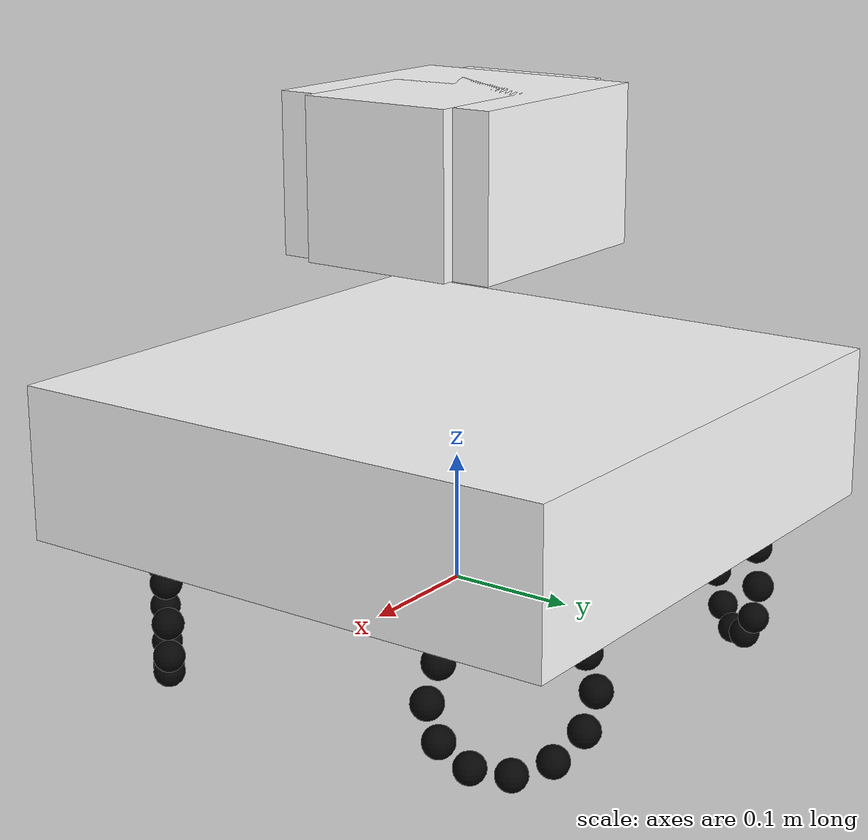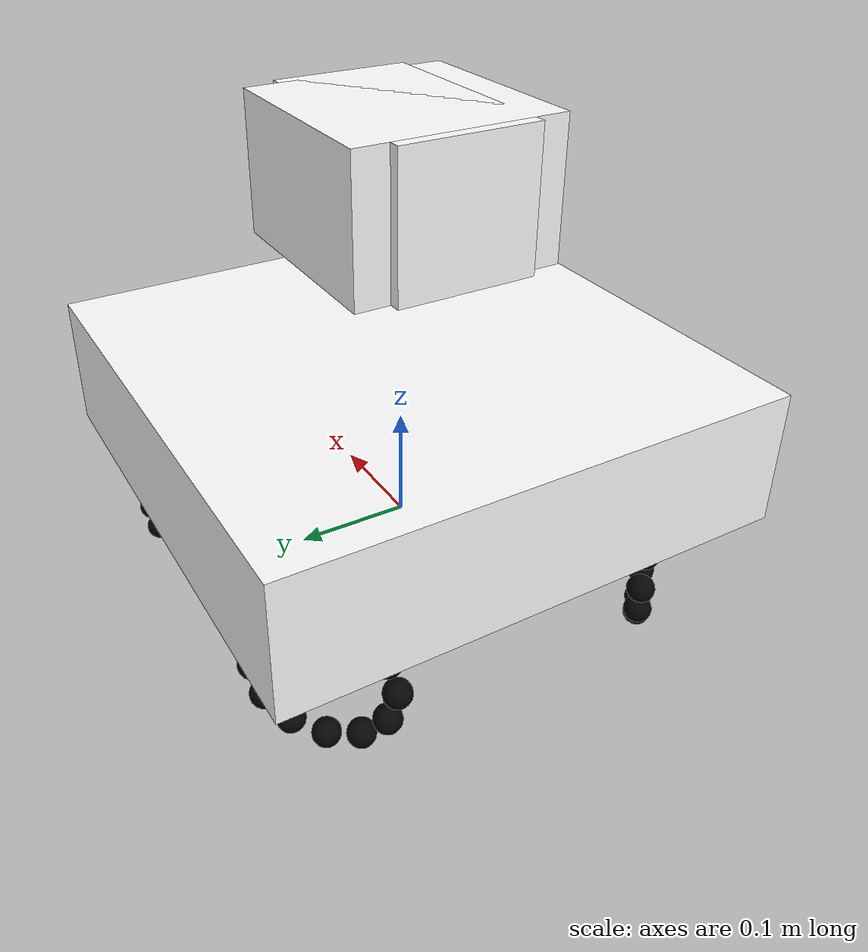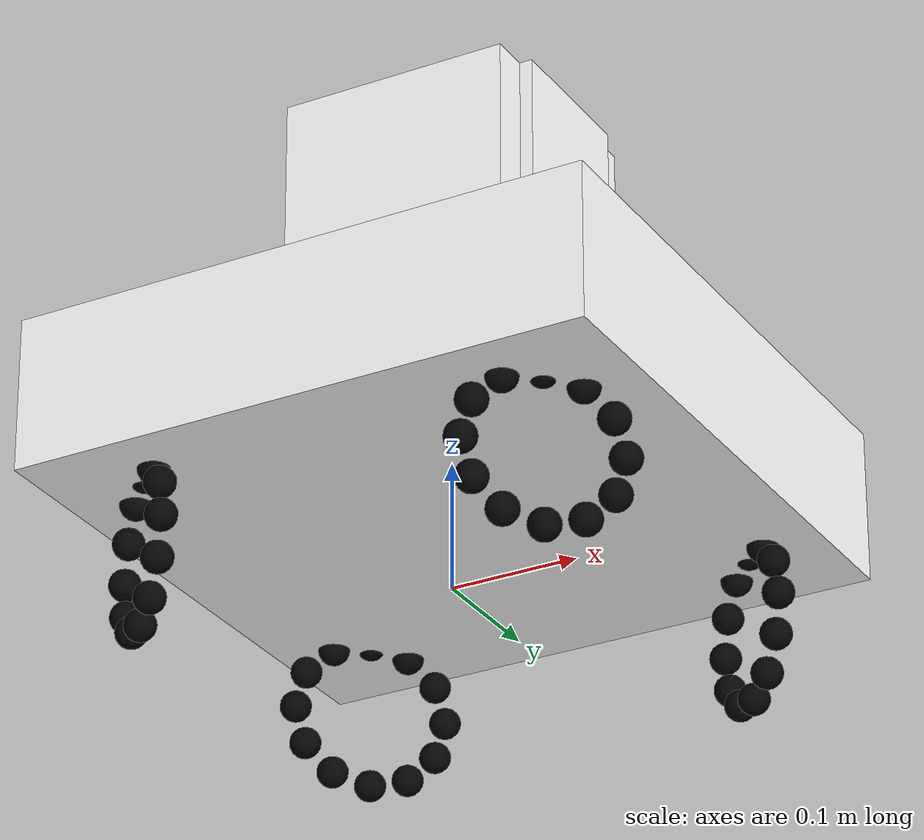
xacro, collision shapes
<?xml version="1.0"?>
<robot name="omni_infantry" xmlns:xacro="http://www.ros.org/wiki/xacro">
  <xacro:arg name="hardware_plugin" default="rmgo_core/OmniInfantryGzInterface"/>
  <xacro:arg name="controllers_file" default="$(find rmgo_bringup)/config/omni_infantry_gz.yaml"/>
  <xacro:arg name="debug_visuals" default="false"/>

  <xacro:property name="wheel_distance_x" value="0.31794"/>
  <xacro:property name="wheel_distance_y" value="0.31794"/>
  <xacro:property name="wheel_radius" value="0.07"/>
  <xacro:property name="roller_radius" value="0.012"/>
  <xacro:property name="roller_ring_radius" value="${wheel_radius - roller_radius}"/>
  <xacro:property name="gimbal_center_height" value="0.32059"/>

  <material name="white">
    <color rgba="1 1 1 1"/>
  </material>

  <material name="black">
    <color rgba="0.02 0.02 0.02 1"/>
  </material>

  <material name="chassis_gray">
    <color rgba="0.36 0.38 0.36 1"/>
  </material>

  <material name="gimbal_orange">
    <color rgba="0.92 0.42 0.12 1"/>
  </material>

  <xacro:macro name="box_inertial" params="mass x y z">
    <inertial>
      <mass value="${mass}"/>
      <inertia
        ixx="${mass * (y * y + z * z) / 12.0}"
        ixy="0.0"
        ixz="0.0"
        iyy="${mass * (x * x + z * z) / 12.0}"
        iyz="0.0"
        izz="${mass * (x * x + y * y) / 12.0}"/>
    </inertial>
  </xacro:macro>

  <xacro:macro name="x_cylinder_inertial" params="mass radius length">
    <inertial>
      <mass value="${mass}"/>
      <inertia
        ixx="${0.5 * mass * radius * radius}"
        ixy="0.0"
        ixz="0.0"
        iyy="${mass * (3.0 * radius * radius + length * length) / 12.0}"
        iyz="0.0"
        izz="${mass * (3.0 * radius * radius + length * length) / 12.0}"/>
    </inertial>
  </xacro:macro>

  <xacro:macro name="sphere_inertial" params="mass radius">
    <inertial>
      <mass value="${mass}"/>
      <inertia
        ixx="${2.0 * mass * radius * radius / 5.0}"
        ixy="0.0"
        ixz="0.0"
        iyy="${2.0 * mass * radius * radius / 5.0}"
        iyz="0.0"
        izz="${2.0 * mass * radius * radius / 5.0}"/>
    </inertial>
  </xacro:macro>

  <xacro:macro name="tiny_inertial" params="mass">
    <inertial>
      <mass value="${mass}"/>
      <inertia ixx="${mass * 1e-6}" ixy="0.0" ixz="0.0" iyy="${mass * 1e-6}" iyz="0.0" izz="${mass * 1e-6}"/>
    </inertial>
  </xacro:macro>

  <xacro:macro name="box_collision" params="x y z">
    <collision>
      <geometry>
        <box size="${x} ${y} ${z}"/>
      </geometry>
    </collision>
  </xacro:macro>

  <xacro:macro name="box_visual" params="name x y z material origin_xyz:='0 0 0'">
    <visual name="${name}">
      <origin xyz="${origin_xyz}"/>
      <geometry>
        <box size="${x} ${y} ${z}"/>
      </geometry>
      <material name="${material}"/>
    </visual>
  </xacro:macro>

  <xacro:macro name="debug_box_visual" params="name x y z material origin_xyz:='0 0 0'">
    <xacro:if value="$(arg debug_visuals)">
      <xacro:box_visual name="${name}" x="${x}" y="${y}" z="${z}" material="${material}" origin_xyz="${origin_xyz}"/>
    </xacro:if>
  </xacro:macro>

  <xacro:macro name="x_cylinder_visual" params="name radius length material">
    <visual name="${name}">
      <origin rpy="0 ${pi/2} 0"/>
      <geometry>
        <cylinder radius="${radius}" length="${length}"/>
      </geometry>
      <material name="${material}"/>
    </visual>
  </xacro:macro>

  <xacro:macro name="debug_x_cylinder_visual" params="name radius length material">
    <xacro:if value="$(arg debug_visuals)">
      <xacro:x_cylinder_visual name="${name}" radius="${radius}" length="${length}" material="${material}"/>
    </xacro:if>
  </xacro:macro>

  <xacro:macro name="stl_visual" params="filename">
    <visual>
      <geometry>
        <mesh filename="package://rmgo_description/meshes/visual/${filename}"/>
      </geometry>
      <material name="white"/>
    </visual>
  </xacro:macro>

  <link name="base_link">
    <xacro:box_inertial mass="10.0" x="0.45" y="0.45" z="0.12"/>
    <xacro:stl_visual filename="base_link.stl"/>
    <xacro:debug_box_visual name="base_debug_visual" x="0.45" y="0.45" z="0.12" material="chassis_gray" origin_xyz="0 0 0.11"/>
    <collision>
      <origin xyz="0 0 0.11"/>
      <geometry>
        <box size="0.45 0.45 0.12"/>
      </geometry>
    </collision>
  </link>

  <gazebo reference="base_link">
    <mu1 value="1.0"/>
    <mu2 value="1.0"/>
    <kp value="1000000.0"/>
    <kd value="100.0"/>
  </gazebo>

  <xacro:macro name="generate_roller" params="wheel index theta">
    <link name="${wheel}_roller_${index}_link">
      <xacro:sphere_inertial mass="0.006" radius="${roller_radius}"/>
      <collision>
        <geometry>
          <sphere radius="${roller_radius}"/>
        </geometry>
      </collision>
      <visual>
        <geometry>
          <sphere radius="${roller_radius}"/>
        </geometry>
        <material name="black"/>
      </visual>
    </link>

    <joint name="${wheel}_roller_${index}_joint" type="continuous">
      <origin xyz="0 ${roller_ring_radius * cos(theta)} ${roller_ring_radius * sin(theta)}"/>
      <axis xyz="0 ${-sin(theta)} ${cos(theta)}"/>
      <dynamics damping="0.0" friction="0.001"/>
      <parent link="${wheel}_wheel_link"/>
      <child link="${wheel}_roller_${index}_link"/>
    </joint>

    <gazebo reference="${wheel}_roller_${index}_link">
      <mu1 value="2000.0"/>
      <mu2 value="2000.0"/>
      <kp value="1000000.0"/>
      <kd value="100.0"/>
      <material>Gazebo/Black</material>
    </gazebo>
  </xacro:macro>

  <xacro:macro name="generate_roller_ring" params="wheel">
    <xacro:generate_roller wheel="${wheel}" index="0" theta="${0*pi/6}"/>
    <xacro:generate_roller wheel="${wheel}" index="1" theta="${1*pi/6}"/>
    <xacro:generate_roller wheel="${wheel}" index="2" theta="${2*pi/6}"/>
    <xacro:generate_roller wheel="${wheel}" index="3" theta="${3*pi/6}"/>
    <xacro:generate_roller wheel="${wheel}" index="4" theta="${4*pi/6}"/>
    <xacro:generate_roller wheel="${wheel}" index="5" theta="${5*pi/6}"/>
    <xacro:generate_roller wheel="${wheel}" index="6" theta="${6*pi/6}"/>
    <xacro:generate_roller wheel="${wheel}" index="7" theta="${7*pi/6}"/>
    <xacro:generate_roller wheel="${wheel}" index="8" theta="${8*pi/6}"/>
    <xacro:generate_roller wheel="${wheel}" index="9" theta="${9*pi/6}"/>
    <xacro:generate_roller wheel="${wheel}" index="10" theta="${10*pi/6}"/>
    <xacro:generate_roller wheel="${wheel}" index="11" theta="${11*pi/6}"/>
  </xacro:macro>

  <xacro:macro name="generate_omni_wheel" params="name rpy xyz">
    <link name="${name}_wheel_link">
      <xacro:x_cylinder_inertial mass="0.45" radius="${wheel_radius}" length="0.05"/>
      <xacro:stl_visual filename="wheel_link.stl"/>
      <xacro:debug_x_cylinder_visual name="${name}_wheel_debug_visual" radius="${wheel_radius}" length="0.05" material="black"/>
    </link>

    <joint name="${name}_wheel_joint" type="continuous">
      <axis xyz="1 0 0"/>
      <limit effort="20.0" velocity="40.0"/>
      <dynamics damping="0.0" friction="0.02"/>
      <parent link="base_link"/>
      <child link="${name}_wheel_link"/>
      <origin rpy="${rpy}" xyz="${xyz}"/>
    </joint>

    <xacro:generate_roller_ring wheel="${name}"/>
  </xacro:macro>

  <xacro:generate_omni_wheel
    name="left_front"
    rpy="0 0 ${pi/4}"
    xyz="${wheel_distance_x/2} ${wheel_distance_y/2} 0"/>
  <xacro:generate_omni_wheel
    name="left_back"
    rpy="0 0 ${3*pi/4}"
    xyz="-${wheel_distance_x/2} ${wheel_distance_y/2} 0"/>
  <xacro:generate_omni_wheel
    name="right_back"
    rpy="0 0 -${3*pi/4}"
    xyz="-${wheel_distance_x/2} -${wheel_distance_y/2} 0"/>
  <xacro:generate_omni_wheel
    name="right_front"
    rpy="0 0 -${pi/4}"
    xyz="${wheel_distance_x/2} -${wheel_distance_y/2} 0"/>

  <link name="yaw_link">
    <xacro:box_inertial mass="2.0" x="0.18" y="0.18" z="0.12"/>
    <xacro:stl_visual filename="yaw_link.stl"/>
    <xacro:debug_box_visual name="yaw_debug_visual" x="0.18" y="0.18" z="0.12" material="gimbal_orange"/>
    <xacro:box_collision x="0.18" y="0.18" z="0.12"/>
  </link>
  <joint name="yaw_joint" type="continuous">
    <axis xyz="0 0 1"/>
    <limit effort="25.0" velocity="12.0"/>
    <dynamics damping="0.08" friction="0.02"/>
    <parent link="base_link"/>
    <child link="yaw_link"/>
    <origin xyz="0 0 ${gimbal_center_height}"/>
  </joint>

  <link name="pitch_link">
    <xacro:box_inertial mass="1.0" x="0.20" y="0.12" z="0.12"/>
    <xacro:stl_visual filename="pitch_link.stl"/>
    <xacro:debug_box_visual name="pitch_debug_visual" x="0.20" y="0.12" z="0.12" material="gimbal_orange"/>
    <xacro:box_collision x="0.20" y="0.12" z="0.12"/>
  </link>
  <joint name="pitch_joint" type="continuous">
    <axis xyz="0 1 0"/>
    <limit effort="6.0" velocity="4.0"/>
    <dynamics damping="0.2" friction="0.04"/>
    <parent link="yaw_link"/>
    <child link="pitch_link"/>
  </joint>

  <link name="left_friction_link">
    <xacro:x_cylinder_inertial mass="0.08" radius="0.025" length="0.025"/>
    <xacro:debug_x_cylinder_visual name="left_friction_debug_visual" radius="0.025" length="0.025" material="black"/>
  </link>
  <joint name="left_friction_joint" type="continuous">
    <axis xyz="1 0 0"/>
    <limit effort="2.0" velocity="800.0"/>
    <dynamics damping="0.003" friction="0.001"/>
    <parent link="pitch_link"/>
    <child link="left_friction_link"/>
    <origin xyz="0.075 0.04 0"/>
  </joint>

  <link name="right_friction_link">
    <xacro:x_cylinder_inertial mass="0.08" radius="0.025" length="0.025"/>
    <xacro:debug_x_cylinder_visual name="right_friction_debug_visual" radius="0.025" length="0.025" material="black"/>
  </link>
  <joint name="right_friction_joint" type="continuous">
    <axis xyz="1 0 0"/>
    <limit effort="2.0" velocity="800.0"/>
    <dynamics damping="0.003" friction="0.001"/>
    <parent link="pitch_link"/>
    <child link="right_friction_link"/>
    <origin xyz="0.075 -0.04 0"/>
  </joint>

  <link name="bullet_feeder_link">
    <xacro:x_cylinder_inertial mass="0.12" radius="0.03" length="0.025"/>
    <xacro:debug_x_cylinder_visual name="bullet_feeder_debug_visual" radius="0.03" length="0.025" material="gimbal_orange"/>
  </link>
  <joint name="bullet_feeder_joint" type="continuous">
    <axis xyz="1 0 0"/>
    <limit effort="4.0" velocity="60.0"/>
    <dynamics damping="0.005" friction="0.002"/>
    <parent link="pitch_link"/>
    <child link="bullet_feeder_link"/>
    <origin xyz="-0.025 0 -0.035"/>
  </joint>

  <link name="imu_link">
    <xacro:tiny_inertial mass="0.01"/>
  </link>
  <joint name="imu_joint" type="fixed">
    <parent link="pitch_link"/>
    <child link="imu_link"/>
    <origin rpy="0 0 ${pi/2}" xyz="0 0 0"/>
  </joint>

  <link name="muzzle_link">
    <xacro:tiny_inertial mass="0.01"/>
  </link>
  <joint name="muzzle_joint" type="fixed">
    <parent link="pitch_link"/>
    <child link="muzzle_link"/>
    <origin xyz="0.059 0 0"/>
  </joint>

  <link name="camera_link">
    <xacro:tiny_inertial mass="0.05"/>
  </link>
  <joint name="camera_joint" type="fixed">
    <parent link="pitch_link"/>
    <child link="camera_link"/>
    <origin xyz="0.06603 0 0.082"/>
  </joint>

  <ros2_control name="OmniInfantry" type="system">
    <hardware>
      <plugin>$(arg hardware_plugin)</plugin>
    </hardware>

    <joint name="left_front_wheel_joint">
      <command_interface name="effort"/>
      <state_interface name="position"/>
      <state_interface name="velocity"/>
    </joint>
    <joint name="left_back_wheel_joint">
      <command_interface name="effort"/>
      <state_interface name="position"/>
      <state_interface name="velocity"/>
    </joint>
    <joint name="right_back_wheel_joint">
      <command_interface name="effort"/>
      <state_interface name="position"/>
      <state_interface name="velocity"/>
    </joint>
    <joint name="right_front_wheel_joint">
      <command_interface name="effort"/>
      <state_interface name="position"/>
      <state_interface name="velocity"/>
    </joint>
    <joint name="yaw_joint">
      <command_interface name="effort"/>
      <state_interface name="position"/>
      <state_interface name="velocity"/>
    </joint>
    <joint name="pitch_joint">
      <command_interface name="velocity"/>
      <state_interface name="position"/>
      <state_interface name="velocity"/>
    </joint>
    <joint name="left_friction_joint">
      <command_interface name="effort"/>
      <state_interface name="position"/>
      <state_interface name="velocity"/>
    </joint>
    <joint name="right_friction_joint">
      <command_interface name="effort"/>
      <state_interface name="position"/>
      <state_interface name="velocity"/>
    </joint>
    <joint name="bullet_feeder_joint">
      <command_interface name="effort"/>
      <state_interface name="position"/>
      <state_interface name="velocity"/>
    </joint>
  </ros2_control>

  <gazebo>
    <plugin filename="gz-sim-odometry-publisher-system" name="gz::sim::systems::OdometryPublisher">
      <dimensions>2</dimensions>
      <odom_publish_frequency>100</odom_publish_frequency>
    </plugin>
    <plugin filename="libgz_ros2_control-system.so" name="gz_ros2_control::GazeboSimROS2ControlPlugin">
      <parameters>$(arg controllers_file)</parameters>
    </plugin>
  </gazebo>
</robot>
